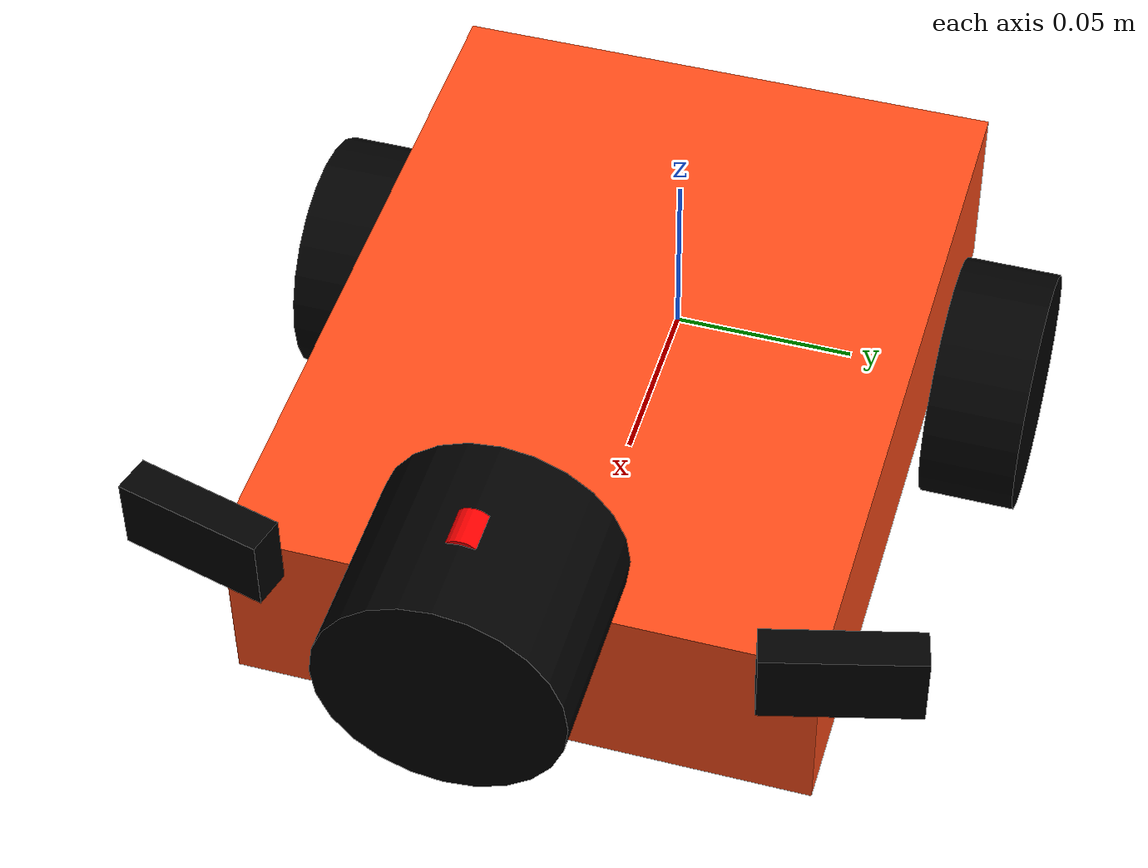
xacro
<?xml version="1.0"?>
<robot xmlns:xacro="http://www.ros.org/wiki/xacro" name="imre_robot">

    <xacro:property name="chassis_length" value="0.2"/>
    <xacro:property name="chassis_width" value="0.15"/>
    <xacro:property name="chassis_height" value="0.05"/>
    <xacro:property name="chassis_mass" value="0.5"/>
    <xacro:property name="wheel_radius" value="0.033"/>
    <xacro:property name="wheel_thickness" value="0.026"/>
    <xacro:property name="wheel_mass" value="0.1"/>
    <xacro:property name="caster_radius" value="0.0165"/>
    <xacro:property name="caster_mass" value="0.05"/>

    <material name="white"> <color rgba="1 1 1 1" /> </material>
    <material name="black"> <color rgba="0 0 0 1" /> </material>
    <material name="orange"> <color rgba="1 0.3 0.1 1"/> </material>
    <material name="red"> <color rgba="1 0 0 1"/> </material>

    <xacro:macro name="inertial_box" params="mass x y z *origin">
        <inertial>
            <xacro:insert_block name="origin"/>
            <mass value="${mass}"/>
            <inertia ixx="${(1/12) * mass * (y*y + z*z)}" ixy="0.0" ixz="0.0"
                     iyy="${(1/12) * mass * (x*x + z*z)}" iyz="0.0"
                     izz="${(1/12) * mass * (x*x + y*y)}"/>
        </inertial>
    </xacro:macro>

    <xacro:macro name="inertial_cylinder" params="mass radius length *origin">
        <inertial>
            <xacro:insert_block name="origin"/>
            <mass value="${mass}"/>
            <inertia ixx="${(1/12) * mass * (3*radius*radius + length*length)}" ixy="0.0" ixz="0.0"
                     iyy="${(1/12) * mass * (3*radius*radius + length*length)}" iyz="0.0"
                     izz="${(1/2) * mass * radius*radius}"/>
        </inertial>
    </xacro:macro>

    <xacro:macro name="inertial_sphere" params="mass radius *origin">
        <inertial>
            <xacro:insert_block name="origin"/>
            <mass value="${mass}"/>
            <inertia ixx="${(2/5) * mass * (radius*radius)}" ixy="0.0" ixz="0.0"
                     iyy="${(2/5) * mass * (radius*radius)}" iyz="0.0"
                     izz="${(2/5) * mass * (radius*radius)}"/>
        </inertial>
    </xacro:macro>

    <link name="base_link"></link>

    <joint name="chassis_joint" type="fixed">
        <parent link="base_link"/>
        <child link="chassis"/>
        <origin xyz="-0.05 0 0"/>
    </joint>

    <link name="chassis">
        <visual>
            <origin xyz="${chassis_length/2} 0 ${chassis_height/2}"/>
            <geometry> <box size="${chassis_length} ${chassis_width} ${chassis_height}"/> </geometry>
            <material name="orange"/>
        </visual>
        <collision>
            <origin xyz="${chassis_length/2} 0 ${chassis_height/2}"/>
            <geometry> <box size="${chassis_length} ${chassis_width} ${chassis_height}"/> </geometry>
        </collision>
        <xacro:inertial_box mass="${chassis_mass}" x="${chassis_length}" y="${chassis_width}" z="${chassis_height}">
            <origin xyz="${chassis_length/2} 0 ${chassis_height/2}" rpy="0 0 0"/>
        </xacro:inertial_box>
    </link>

    <joint name="left_wheel_joint" type="continuous">
        <parent link="base_link"/>
        <child link="left_wheel"/>
        <origin xyz="0 0.09 0" rpy="-${pi/2} 0 0"/>
        <axis xyz="0 0 1"/>
    </joint>
    <link name="left_wheel">
        <visual>
            <geometry> <cylinder radius="${wheel_radius}" length="${wheel_thickness}"/> </geometry>
            <material name="black"/>
        </visual>
        <collision>
            <geometry> <cylinder radius="${wheel_radius}" length="${wheel_thickness}"/> </geometry>
        </collision>
        <xacro:inertial_cylinder mass="${wheel_mass}" radius="${wheel_radius}" length="${wheel_thickness}">
            <origin xyz="0 0 0" rpy="0 0 0"/>
        </xacro:inertial_cylinder>
    </link>

    <joint name="right_wheel_joint" type="continuous">
        <parent link="base_link"/>
        <child link="right_wheel"/>
        <origin xyz="0 -0.09 0" rpy="${pi/2} 0 0"/>
        <axis xyz="0 0 -1"/>
    </joint>
    <link name="right_wheel">
        <visual>
            <geometry> <cylinder radius="${wheel_radius}" length="${wheel_thickness}"/> </geometry>
            <material name="black"/>
        </visual>
        <collision>
            <geometry> <cylinder radius="${wheel_radius}" length="${wheel_thickness}"/> </geometry>
        </collision>
        <xacro:inertial_cylinder mass="${wheel_mass}" radius="${wheel_radius}" length="${wheel_thickness}">
            <origin xyz="0 0 0" rpy="0 0 0"/>
        </xacro:inertial_cylinder>
    </link>

    <joint name="caster_wheel_joint" type="fixed">
        <parent link="base_link"/>
        <child link="caster_wheel"/>
        <origin xyz="0.12 0 -0.0165" rpy="0 0 0"/>
    </joint>
    <link name="caster_wheel">
        <visual>
            <geometry> <sphere radius="${caster_radius}"/> </geometry>
            <material name="white"/>
        </visual>
        <collision>
            <geometry> <sphere radius="${caster_radius}"/> </geometry>
        </collision>
        <xacro:inertial_sphere mass="${caster_mass}" radius="${caster_radius}">
             <origin xyz="0 0 0" rpy="0 0 0"/>
        </xacro:inertial_sphere>
    </link>
    <gazebo reference="caster_wheel">
        <mu1>0.0</mu1> <mu2>0.0</mu2> <material>Gazebo/White</material>
    </gazebo>

    <joint name="camera_joint" type="revolute">
        <parent link="chassis"/>
        <child link="camera_link"/>
        <origin xyz="0.23 0 0.08" rpy="0 0 0"/>
        <axis xyz="0 1 0"/>
        <limit lower="0.0" upper="1.0" effort="100.0" velocity="2.0"/>
        <dynamics damping="0.0" friction="0.0"/>
    </joint>

    <link name="camera_link">
        <visual>
            <origin xyz="0 0 0" rpy="0 1.57 0"/>
            <geometry> <cylinder radius="0.03" length="0.05"/> </geometry>
            <material name="black"/>
        </visual>
        <visual>
            <origin xyz="0 0 0.026" rpy="0 1.57 0"/>
            <geometry> <cylinder radius="0.005" length="0.01"/> </geometry>
            <material name="red"/>
        </visual>
        <inertial>
            <mass value="0.2"/>
            <inertia ixx="0.02" ixy="0" ixz="0" iyy="0.02" iyz="0" izz="0.02"/>
        </inertial>
    </link>

    <joint name="camera_optical_joint" type="fixed">
        <parent link="camera_link"/>
        <child link="camera_link_optical"/>
        <origin xyz="0 0 0" rpy="-1.57 0 -1.57"/>
    </joint>
    <link name="camera_link_optical"></link>

    <gazebo reference="camera_link">
        <sensor name="camera" type="camera">
            <pose> 0 0 0 0 0 0 </pose>
            <visualize>true</visualize>
            <update_rate>10</update_rate>
            <camera>
                <horizontal_fov>1.089</horizontal_fov>
                <image> <format>R8G8B8</format> <width>640</width> <height>480</height> </image>
            </camera>
            <plugin name="camera_controller" filename="libgazebo_ros_camera.so">
                <frame_name>camera_link_optical</frame_name>
            </plugin>
        </sensor>

        <sensor name="laser_sight" type="ray">
            <pose> 0 0 0 0 0 0 </pose>
            <visualize>true</visualize> <update_rate>30</update_rate>
            <ray>
                <scan>
                    <horizontal>
                        <samples>1</samples>
                        <resolution>1</resolution>
                        <min_angle>0</min_angle>
                        <max_angle>0</max_angle>
                    </horizontal>
                </scan>
                <range>
                    <min>0.05</min>
                    <max>50.0</max>
                </range>
            </ray>
            <plugin name="laser_controller" filename="libgazebo_ros_ray_sensor.so">
                <ros> <remapping>~/out:=/laser_sight_beam</remapping> </ros>
                <output_type>sensor_msgs/LaserScan</output_type>
            </plugin>
        </sensor>
    </gazebo>

    <joint name="sonar_left_joint" type="fixed">
        <parent link="chassis"/>
        <child link="sonar_left_link"/>
        <origin xyz="0.2 0.08 0.05" rpy="0 0 0.25"/>
    </joint>
    <link name="sonar_left_link">
        <visual> <geometry> <box size="0.01 0.04 0.02"/> </geometry> <material name="black"/> </visual>
    </link>
    <gazebo reference="sonar_left_link">
        <sensor name="sonar_left" type="ray">
            <pose>0 0 0 0 0 0</pose>
            <visualize>false</visualize>
            <update_rate>10</update_rate>
            <ray>
                <scan> <horizontal> <samples>5</samples> <min_angle>-0.2</min_angle> <max_angle>0.2</max_angle> </horizontal> </scan>
                <range> <min>0.02</min> <max>2.0</max> </range>
            </ray>
            <plugin name="sonar_left_controller" filename="libgazebo_ros_ray_sensor.so">
                <ros> <remapping>~/out:=/sonar/left</remapping> </ros> <output_type>sensor_msgs/LaserScan</output_type>
            </plugin>
        </sensor>
    </gazebo>

    <joint name="sonar_right_joint" type="fixed">
        <parent link="chassis"/>
        <child link="sonar_right_link"/>
        <origin xyz="0.2 -0.08 0.05" rpy="0 0 -0.25"/>
    </joint>
    <link name="sonar_right_link">
        <visual> <geometry> <box size="0.01 0.04 0.02"/> </geometry> <material name="black"/> </visual>
    </link>
    <gazebo reference="sonar_right_link">
        <sensor name="sonar_right" type="ray">
            <pose>0 0 0 0 0 0</pose>
            <visualize>false</visualize>
            <update_rate>10</update_rate>
            <ray>
                <scan> <horizontal> <samples>5</samples> <min_angle>-0.2</min_angle> <max_angle>0.2</max_angle> </horizontal> </scan>
                <range> <min>0.02</min> <max>2.0</max> </range>
            </ray>
            <plugin name="sonar_right_controller" filename="libgazebo_ros_ray_sensor.so">
                <ros> <remapping>~/out:=/sonar/right</remapping> </ros> <output_type>sensor_msgs/LaserScan</output_type>
            </plugin>
        </sensor>
    </gazebo>

    <joint name="line_left_joint" type="fixed">
        <parent link="chassis"/> <child link="line_left_link"/> <origin xyz="0.18 0.05 0.02" rpy="0 1.57 0"/>
    </joint>
    <link name="line_left_link">
        <visual> <geometry> <box size="0.01 0.01 0.01"/> </geometry> <material name="black"/> </visual>
    </link>
    <gazebo reference="line_left_link">
        <sensor name="line_left" type="camera">
            <update_rate>20</update_rate>
            <camera> <horizontal_fov>0.1</horizontal_fov> <image> <width>1</width> <height>1</height> <format>L8</format> </image> </camera>
            <plugin name="line_left_controller" filename="libgazebo_ros_camera.so">
                <frame_name>line_left_link</frame_name>
                <camera_name>line_sensor/left</camera_name>
                <image_topic_name>image_raw</image_topic_name>
            </plugin>
        </sensor>
    </gazebo>

    <joint name="line_right_joint" type="fixed">
        <parent link="chassis"/> <child link="line_right_link"/> <origin xyz="0.18 -0.05 0.02" rpy="0 1.57 0"/>
    </joint>
    <link name="line_right_link">
        <visual> <geometry> <box size="0.01 0.01 0.01"/> </geometry> <material name="black"/> </visual>
    </link>
    <gazebo reference="line_right_link">
        <sensor name="line_right" type="camera">
            <update_rate>20</update_rate>
            <camera> <horizontal_fov>0.1</horizontal_fov> <image> <width>1</width> <height>1</height> <format>L8</format> </image> </camera>
            <plugin name="line_right_controller" filename="libgazebo_ros_camera.so">
                <frame_name>line_right_link</frame_name>
                <camera_name>line_sensor/right</camera_name>
                <image_topic_name>image_raw</image_topic_name>
            </plugin>
        </sensor>
    </gazebo>

    <gazebo>
        <plugin name='diff_drive' filename='libgazebo_ros_diff_drive.so'>
            <left_joint>left_wheel_joint</left_joint>
            <right_joint>right_wheel_joint</right_joint>
            <wheel_separation>0.18</wheel_separation>
            <wheel_diameter>0.066</wheel_diameter>
            <max_wheel_torque>200</max_wheel_torque>
            <publish_odom>true</publish_odom>
            <publish_odom_tf>true</publish_odom_tf>
            <robot_base_frame>base_link</robot_base_frame>
        </plugin>
    </gazebo>

    <gazebo reference="chassis"> <material>Gazebo/Orange</material> </gazebo>
    <gazebo reference="left_wheel"> <material>Gazebo/FlatBlack</material> </gazebo>
    <gazebo reference="right_wheel"> <material>Gazebo/FlatBlack</material> </gazebo>

    <ros2_control name="GazeboSystem" type="system">
        <hardware>
            <plugin>gazebo_ros2_control/GazeboSystem</plugin>
        </hardware>
        <joint name="camera_joint">
            <command_interface name="position">
                <param name="min">0.0</param>
                <param name="max">1.0</param>
            </command_interface>
            <state_interface name="velocity"/>
            <state_interface name="position"/>
        </joint>
    </ros2_control>

    <gazebo>
        <plugin name="gazebo_ros2_control" filename="libgazebo_ros2_control.so">
            <parameters>$(find imre_description)/config/my_controllers.yaml</parameters>
        </plugin>
    </gazebo>

</robot>
